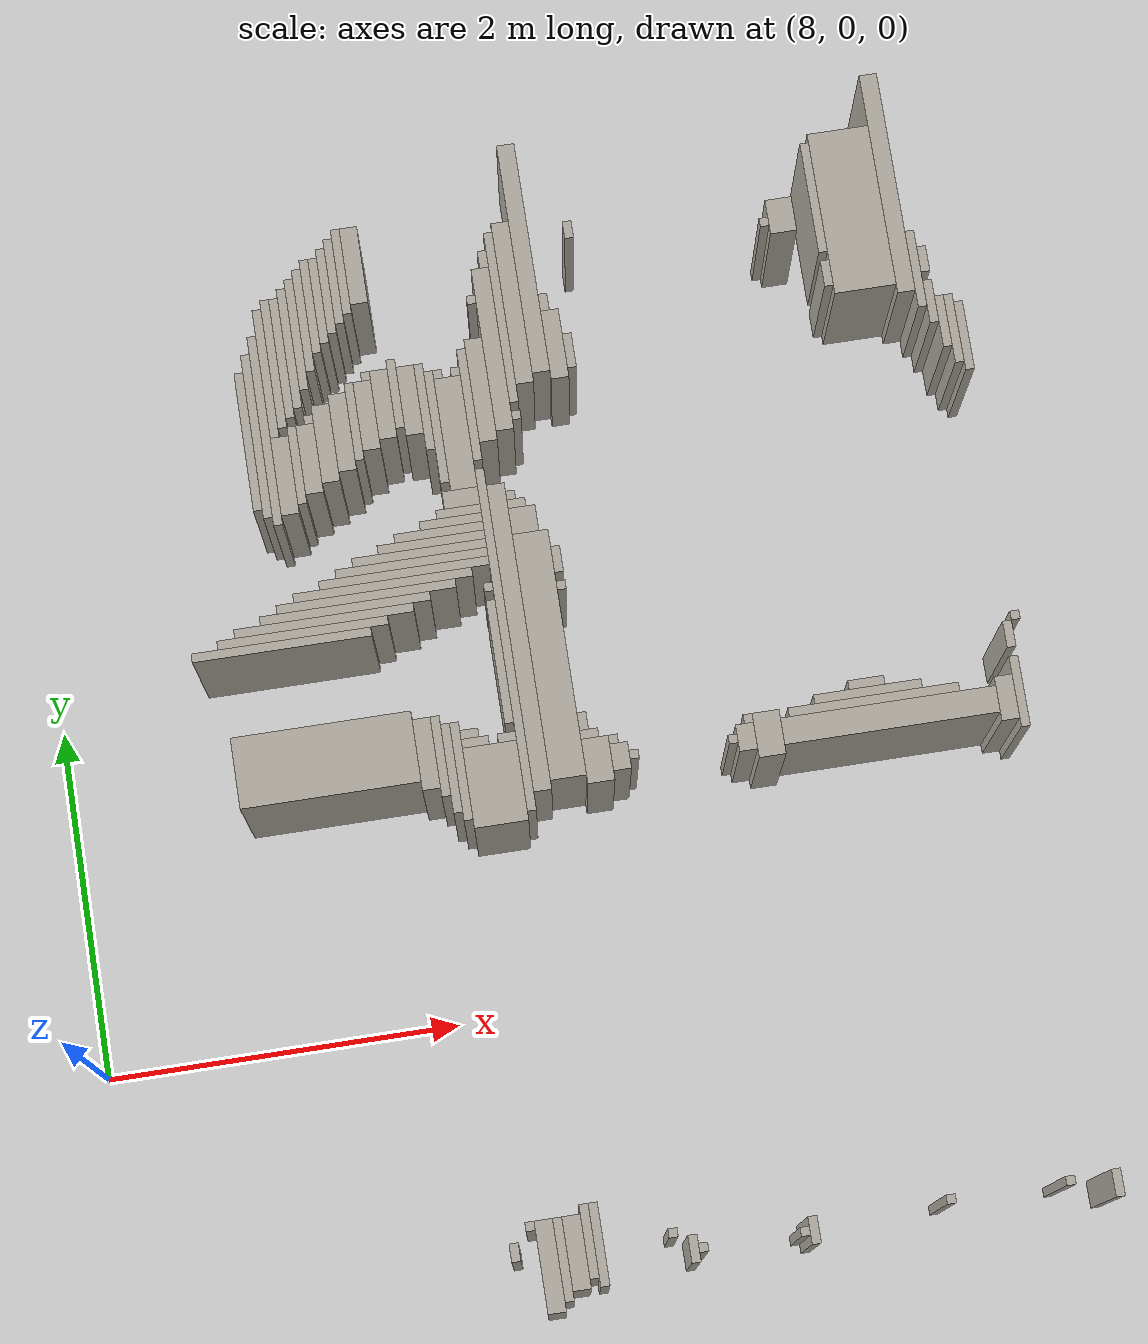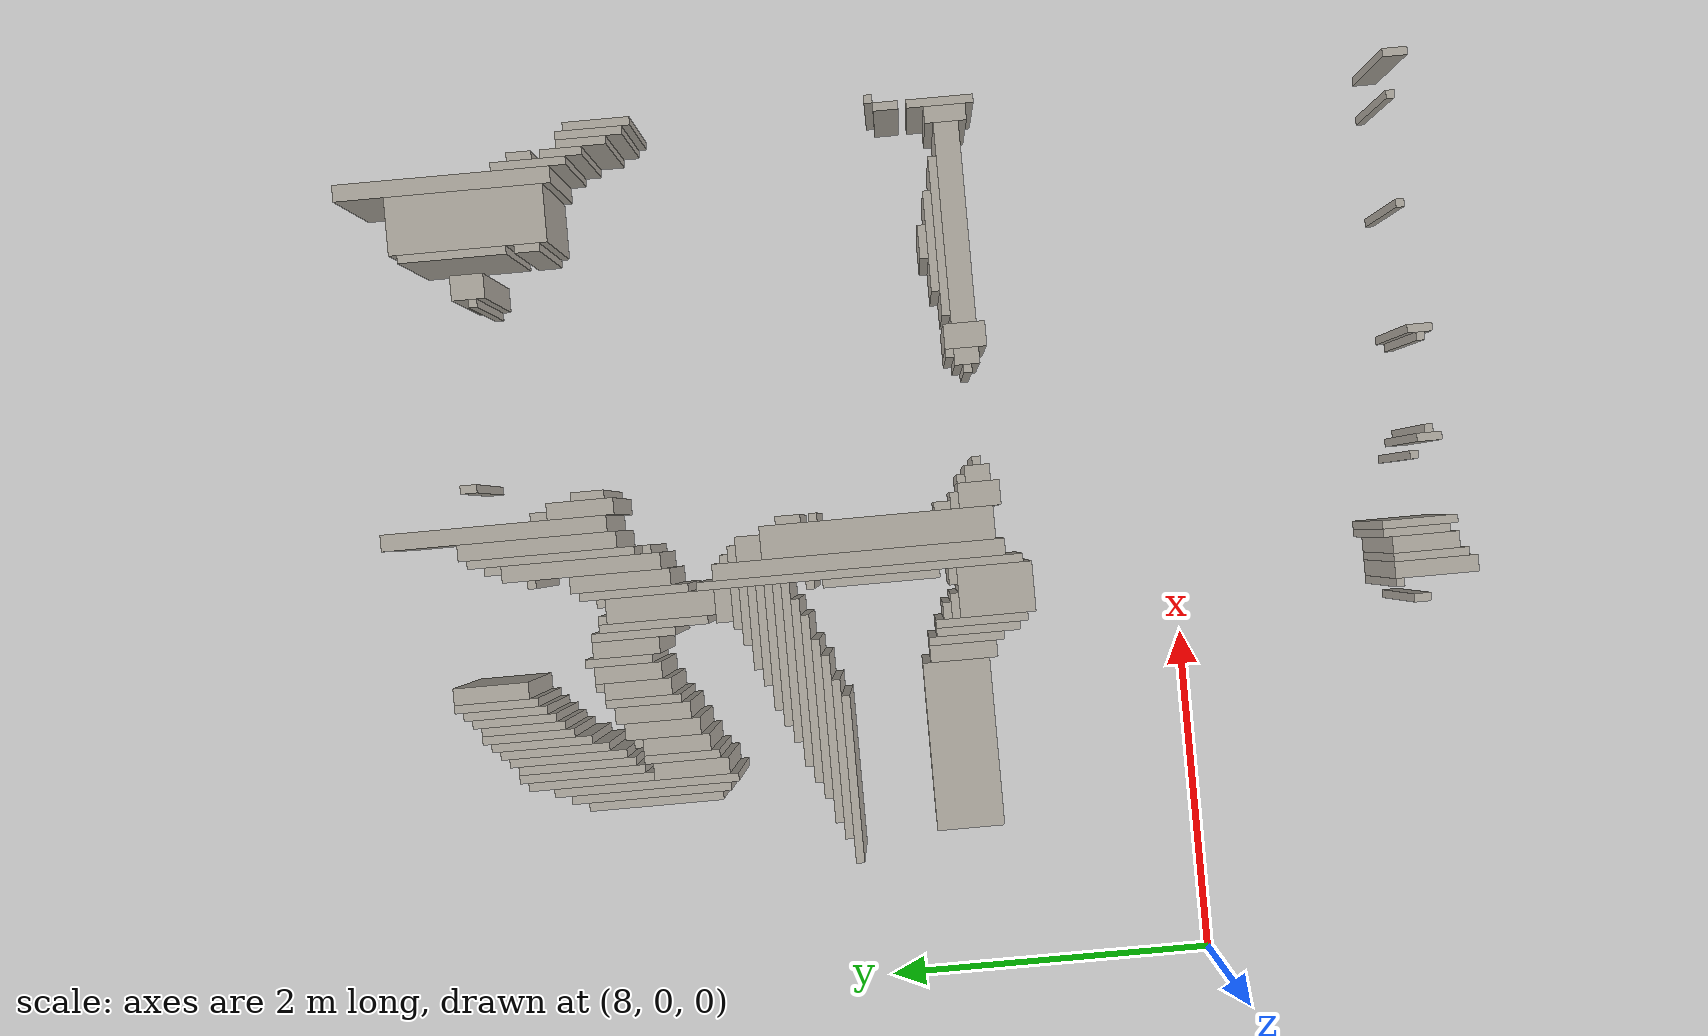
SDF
<sdf version="1.6">
 <world name="fr079_office">
  <include><uri>model://sun</uri></include>
  <include><uri>model://ground_plane</uri></include>
  <model name="fr079_office_walls">
   <static>true</static>
   <link name="w1563">
    <pose>10.302 -1.456 0.500 0 0 0</pose>
    <collision name="c"><geometry><box><size>0.100 0.500 1.000</size></box></geometry></collision>
    <visual name="v">
     <geometry><box><size>0.100 0.500 1.000</size></box></geometry>
     <material><ambient>0.68 0.66 0.62 1</ambient><diffuse>0.68 0.66 0.62 1</diffuse></material>
    </visual>
   </link>
   <link name="w1589">
    <pose>10.377 -1.431 0.500 0 0 0</pose>
    <collision name="c"><geometry><box><size>0.050 0.450 1.000</size></box></geometry></collision>
    <visual name="v">
     <geometry><box><size>0.050 0.450 1.000</size></box></geometry>
     <material><ambient>0.68 0.66 0.62 1</ambient><diffuse>0.68 0.66 0.62 1</diffuse></material>
    </visual>
   </link>
   <link name="w1621">
    <pose>10.452 -1.406 0.500 0 0 0</pose>
    <collision name="c"><geometry><box><size>0.100 0.400 1.000</size></box></geometry></collision>
    <visual name="v">
     <geometry><box><size>0.100 0.400 1.000</size></box></geometry>
     <material><ambient>0.68 0.66 0.62 1</ambient><diffuse>0.68 0.66 0.62 1</diffuse></material>
    </visual>
   </link>
   <link name="w1622">
    <pose>10.577 -1.381 0.500 0 0 0</pose>
    <collision name="c"><geometry><box><size>0.050 0.450 1.000</size></box></geometry></collision>
    <visual name="v">
     <geometry><box><size>0.050 0.450 1.000</size></box></geometry>
     <material><ambient>0.68 0.66 0.62 1</ambient><diffuse>0.68 0.66 0.62 1</diffuse></material>
    </visual>
   </link>
   <link name="w1650">
    <pose>10.527 -1.356 0.500 0 0 0</pose>
    <collision name="c"><geometry><box><size>0.050 0.400 1.000</size></box></geometry></collision>
    <visual name="v">
     <geometry><box><size>0.050 0.400 1.000</size></box></geometry>
     <material><ambient>0.68 0.66 0.62 1</ambient><diffuse>0.68 0.66 0.62 1</diffuse></material>
    </visual>
   </link>
   <link name="w1651">
    <pose>11.077 -1.481 0.500 0 0 0</pose>
    <collision name="c"><geometry><box><size>0.050 0.150 1.000</size></box></geometry></collision>
    <visual name="v">
     <geometry><box><size>0.050 0.150 1.000</size></box></geometry>
     <material><ambient>0.68 0.66 0.62 1</ambient><diffuse>0.68 0.66 0.62 1</diffuse></material>
    </visual>
   </link>
   <link name="w1652">
    <pose>11.727 -1.481 0.500 0 0 0</pose>
    <collision name="c"><geometry><box><size>0.050 0.150 1.000</size></box></geometry></collision>
    <visual name="v">
     <geometry><box><size>0.050 0.150 1.000</size></box></geometry>
     <material><ambient>0.68 0.66 0.62 1</ambient><diffuse>0.68 0.66 0.62 1</diffuse></material>
    </visual>
   </link>
   <link name="w1653">
    <pose>13.377 -1.481 0.500 0 0 0</pose>
    <collision name="c"><geometry><box><size>0.050 0.150 1.000</size></box></geometry></collision>
    <visual name="v">
     <geometry><box><size>0.050 0.150 1.000</size></box></geometry>
     <material><ambient>0.68 0.66 0.62 1</ambient><diffuse>0.68 0.66 0.62 1</diffuse></material>
    </visual>
   </link>
   <link name="w1676">
    <pose>11.127 -1.481 0.500 0 0 0</pose>
    <collision name="c"><geometry><box><size>0.050 0.050 1.000</size></box></geometry></collision>
    <visual name="v">
     <geometry><box><size>0.050 0.050 1.000</size></box></geometry>
     <material><ambient>0.68 0.66 0.62 1</ambient><diffuse>0.68 0.66 0.62 1</diffuse></material>
    </visual>
   </link>
   <link name="w1677">
    <pose>11.677 -1.481 0.500 0 0 0</pose>
    <collision name="c"><geometry><box><size>0.050 0.050 1.000</size></box></geometry></collision>
    <visual name="v">
     <geometry><box><size>0.050 0.050 1.000</size></box></geometry>
     <material><ambient>0.68 0.66 0.62 1</ambient><diffuse>0.68 0.66 0.62 1</diffuse></material>
    </visual>
   </link>
   <link name="w1691">
    <pose>12.477 -1.431 0.500 0 0 0</pose>
    <collision name="c"><geometry><box><size>0.050 0.050 1.000</size></box></geometry></collision>
    <visual name="v">
     <geometry><box><size>0.050 0.050 1.000</size></box></geometry>
     <material><ambient>0.68 0.66 0.62 1</ambient><diffuse>0.68 0.66 0.62 1</diffuse></material>
    </visual>
   </link>
   <link name="w1692">
    <pose>13.127 -1.431 0.500 0 0 0</pose>
    <collision name="c"><geometry><box><size>0.050 0.050 1.000</size></box></geometry></collision>
    <visual name="v">
     <geometry><box><size>0.050 0.050 1.000</size></box></geometry>
     <material><ambient>0.68 0.66 0.62 1</ambient><diffuse>0.68 0.66 0.62 1</diffuse></material>
    </visual>
   </link>
   <link name="w1699">
    <pose>10.127 -1.356 0.500 0 0 0</pose>
    <collision name="c"><geometry><box><size>0.050 0.100 1.000</size></box></geometry></collision>
    <visual name="v">
     <geometry><box><size>0.050 0.100 1.000</size></box></geometry>
     <material><ambient>0.68 0.66 0.62 1</ambient><diffuse>0.68 0.66 0.62 1</diffuse></material>
    </visual>
   </link>
   <link name="w1700">
    <pose>10.977 -1.381 0.500 0 0 0</pose>
    <collision name="c"><geometry><box><size>0.050 0.050 1.000</size></box></geometry></collision>
    <visual name="v">
     <geometry><box><size>0.050 0.050 1.000</size></box></geometry>
     <material><ambient>0.68 0.66 0.62 1</ambient><diffuse>0.68 0.66 0.62 1</diffuse></material>
    </visual>
   </link>
   <link name="w1738">
    <pose>10.227 -1.231 0.500 0 0 0</pose>
    <collision name="c"><geometry><box><size>0.050 0.050 1.000</size></box></geometry></collision>
    <visual name="v">
     <geometry><box><size>0.050 0.050 1.000</size></box></geometry>
     <material><ambient>0.68 0.66 0.62 1</ambient><diffuse>0.68 0.66 0.62 1</diffuse></material>
    </visual>
   </link>
   <link name="w1827">
    <pose>10.402 1.169 0.500 0 0 0</pose>
    <collision name="c"><geometry><box><size>0.300 0.450 1.000</size></box></geometry></collision>
    <visual name="v">
     <geometry><box><size>0.300 0.450 1.000</size></box></geometry>
     <material><ambient>0.68 0.66 0.62 1</ambient><diffuse>0.68 0.66 0.62 1</diffuse></material>
    </visual>
   </link>
   <link name="w1835">
    <pose>10.227 1.269 0.500 0 0 0</pose>
    <collision name="c"><geometry><box><size>0.050 0.550 1.000</size></box></geometry></collision>
    <visual name="v">
     <geometry><box><size>0.050 0.550 1.000</size></box></geometry>
     <material><ambient>0.68 0.66 0.62 1</ambient><diffuse>0.68 0.66 0.62 1</diffuse></material>
    </visual>
   </link>
   <link name="w1836">
    <pose>10.577 1.969 0.500 0 0 0</pose>
    <collision name="c"><geometry><box><size>0.050 1.950 1.000</size></box></geometry></collision>
    <visual name="v">
     <geometry><box><size>0.050 1.950 1.000</size></box></geometry>
     <material><ambient>0.68 0.66 0.62 1</ambient><diffuse>0.68 0.66 0.62 1</diffuse></material>
    </visual>
   </link>
   <link name="w1850">
    <pose>10.177 1.294 0.500 0 0 0</pose>
    <collision name="c"><geometry><box><size>0.050 0.500 1.000</size></box></geometry></collision>
    <visual name="v">
     <geometry><box><size>0.050 0.500 1.000</size></box></geometry>
     <material><ambient>0.68 0.66 0.62 1</ambient><diffuse>0.68 0.66 0.62 1</diffuse></material>
    </visual>
   </link>
   <link name="w1851">
    <pose>13.327 1.244 0.500 0 0 0</pose>
    <collision name="c"><geometry><box><size>0.050 0.400 1.000</size></box></geometry></collision>
    <visual name="v">
     <geometry><box><size>0.050 0.400 1.000</size></box></geometry>
     <material><ambient>0.68 0.66 0.62 1</ambient><diffuse>0.68 0.66 0.62 1</diffuse></material>
    </visual>
   </link>
   <link name="w1867">
    <pose>10.652 1.969 0.500 0 0 0</pose>
    <collision name="c"><geometry><box><size>0.100 1.750 1.000</size></box></geometry></collision>
    <visual name="v">
     <geometry><box><size>0.100 1.750 1.000</size></box></geometry>
     <material><ambient>0.68 0.66 0.62 1</ambient><diffuse>0.68 0.66 0.62 1</diffuse></material>
    </visual>
   </link>
   <link name="w1868">
    <pose>10.977 1.219 0.500 0 0 0</pose>
    <collision name="c"><geometry><box><size>0.150 0.250 1.000</size></box></geometry></collision>
    <visual name="v">
     <geometry><box><size>0.150 0.250 1.000</size></box></geometry>
     <material><ambient>0.68 0.66 0.62 1</ambient><diffuse>0.68 0.66 0.62 1</diffuse></material>
    </visual>
   </link>
   <link name="w1869">
    <pose>11.927 1.219 0.500 0 0 0</pose>
    <collision name="c"><geometry><box><size>0.150 0.250 1.000</size></box></geometry></collision>
    <visual name="v">
     <geometry><box><size>0.150 0.250 1.000</size></box></geometry>
     <material><ambient>0.68 0.66 0.62 1</ambient><diffuse>0.68 0.66 0.62 1</diffuse></material>
    </visual>
   </link>
   <link name="w1870">
    <pose>13.252 1.219 0.500 0 0 0</pose>
    <collision name="c"><geometry><box><size>0.100 0.250 1.000</size></box></geometry></collision>
    <visual name="v">
     <geometry><box><size>0.100 0.250 1.000</size></box></geometry>
     <material><ambient>0.68 0.66 0.62 1</ambient><diffuse>0.68 0.66 0.62 1</diffuse></material>
    </visual>
   </link>
   <link name="w1897">
    <pose>10.127 1.369 0.500 0 0 0</pose>
    <collision name="c"><geometry><box><size>0.050 0.450 1.000</size></box></geometry></collision>
    <visual name="v">
     <geometry><box><size>0.050 0.450 1.000</size></box></geometry>
     <material><ambient>0.68 0.66 0.62 1</ambient><diffuse>0.68 0.66 0.62 1</diffuse></material>
    </visual>
   </link>
   <link name="w1898">
    <pose>10.802 1.844 0.500 0 0 0</pose>
    <collision name="c"><geometry><box><size>0.200 1.400 1.000</size></box></geometry></collision>
    <visual name="v">
     <geometry><box><size>0.200 1.400 1.000</size></box></geometry>
     <material><ambient>0.68 0.66 0.62 1</ambient><diffuse>0.68 0.66 0.62 1</diffuse></material>
    </visual>
   </link>
   <link name="w1899">
    <pose>11.102 1.219 0.500 0 0 0</pose>
    <collision name="c"><geometry><box><size>0.100 0.150 1.000</size></box></geometry></collision>
    <visual name="v">
     <geometry><box><size>0.100 0.150 1.000</size></box></geometry>
     <material><ambient>0.68 0.66 0.62 1</ambient><diffuse>0.68 0.66 0.62 1</diffuse></material>
    </visual>
   </link>
   <link name="w1900">
    <pose>11.802 1.219 0.500 0 0 0</pose>
    <collision name="c"><geometry><box><size>0.100 0.150 1.000</size></box></geometry></collision>
    <visual name="v">
     <geometry><box><size>0.100 0.150 1.000</size></box></geometry>
     <material><ambient>0.68 0.66 0.62 1</ambient><diffuse>0.68 0.66 0.62 1</diffuse></material>
    </visual>
   </link>
   <link name="w1901">
    <pose>12.602 1.219 0.500 0 0 0</pose>
    <collision name="c"><geometry><box><size>1.200 0.150 1.000</size></box></geometry></collision>
    <visual name="v">
     <geometry><box><size>1.200 0.150 1.000</size></box></geometry>
     <material><ambient>0.68 0.66 0.62 1</ambient><diffuse>0.68 0.66 0.62 1</diffuse></material>
    </visual>
   </link>
   <link name="w1930">
    <pose>10.052 1.394 0.500 0 0 0</pose>
    <collision name="c"><geometry><box><size>0.100 0.400 1.000</size></box></geometry></collision>
    <visual name="v">
     <geometry><box><size>0.100 0.400 1.000</size></box></geometry>
     <material><ambient>0.68 0.66 0.62 1</ambient><diffuse>0.68 0.66 0.62 1</diffuse></material>
    </visual>
   </link>
   <link name="w1931">
    <pose>11.177 1.219 0.500 0 0 0</pose>
    <collision name="c"><geometry><box><size>0.050 0.050 1.000</size></box></geometry></collision>
    <visual name="v">
     <geometry><box><size>0.050 0.050 1.000</size></box></geometry>
     <material><ambient>0.68 0.66 0.62 1</ambient><diffuse>0.68 0.66 0.62 1</diffuse></material>
    </visual>
   </link>
   <link name="w1932">
    <pose>11.727 1.219 0.500 0 0 0</pose>
    <collision name="c"><geometry><box><size>0.050 0.050 1.000</size></box></geometry></collision>
    <visual name="v">
     <geometry><box><size>0.050 0.050 1.000</size></box></geometry>
     <material><ambient>0.68 0.66 0.62 1</ambient><diffuse>0.68 0.66 0.62 1</diffuse></material>
    </visual>
   </link>
   <link name="w1953">
    <pose>9.502 1.444 0.500 0 0 0</pose>
    <collision name="c"><geometry><box><size>1.000 0.400 1.000</size></box></geometry></collision>
    <visual name="v">
     <geometry><box><size>1.000 0.400 1.000</size></box></geometry>
     <material><ambient>0.68 0.66 0.62 1</ambient><diffuse>0.68 0.66 0.62 1</diffuse></material>
    </visual>
   </link>
   <link name="w1967">
    <pose>11.077 1.319 0.500 0 0 0</pose>
    <collision name="c"><geometry><box><size>0.050 0.050 1.000</size></box></geometry></collision>
    <visual name="v">
     <geometry><box><size>0.050 0.050 1.000</size></box></geometry>
     <material><ambient>0.68 0.66 0.62 1</ambient><diffuse>0.68 0.66 0.62 1</diffuse></material>
    </visual>
   </link>
   <link name="w1968">
    <pose>11.827 1.319 0.500 0 0 0</pose>
    <collision name="c"><geometry><box><size>0.050 0.050 1.000</size></box></geometry></collision>
    <visual name="v">
     <geometry><box><size>0.050 0.050 1.000</size></box></geometry>
     <material><ambient>0.68 0.66 0.62 1</ambient><diffuse>0.68 0.66 0.62 1</diffuse></material>
    </visual>
   </link>
   <link name="w1969">
    <pose>12.527 1.319 0.500 0 0 0</pose>
    <collision name="c"><geometry><box><size>0.950 0.050 1.000</size></box></geometry></collision>
    <visual name="v">
     <geometry><box><size>0.950 0.050 1.000</size></box></geometry>
     <material><ambient>0.68 0.66 0.62 1</ambient><diffuse>0.68 0.66 0.62 1</diffuse></material>
    </visual>
   </link>
   <link name="w1984">
    <pose>10.952 1.369 0.500 0 0 0</pose>
    <collision name="c"><geometry><box><size>0.100 0.050 1.000</size></box></geometry></collision>
    <visual name="v">
     <geometry><box><size>0.100 0.050 1.000</size></box></geometry>
     <material><ambient>0.68 0.66 0.62 1</ambient><diffuse>0.68 0.66 0.62 1</diffuse></material>
    </visual>
   </link>
   <link name="w1985">
    <pose>12.502 1.369 0.500 0 0 0</pose>
    <collision name="c"><geometry><box><size>0.600 0.050 1.000</size></box></geometry></collision>
    <visual name="v">
     <geometry><box><size>0.600 0.050 1.000</size></box></geometry>
     <material><ambient>0.68 0.66 0.62 1</ambient><diffuse>0.68 0.66 0.62 1</diffuse></material>
    </visual>
   </link>
   <link name="w1996">
    <pose>10.327 1.419 0.500 0 0 0</pose>
    <collision name="c"><geometry><box><size>0.150 0.050 1.000</size></box></geometry></collision>
    <visual name="v">
     <geometry><box><size>0.150 0.050 1.000</size></box></geometry>
     <material><ambient>0.68 0.66 0.62 1</ambient><diffuse>0.68 0.66 0.62 1</diffuse></material>
    </visual>
   </link>
   <link name="w1997">
    <pose>10.502 1.419 0.500 0 0 0</pose>
    <collision name="c"><geometry><box><size>0.100 0.050 1.000</size></box></geometry></collision>
    <visual name="v">
     <geometry><box><size>0.100 0.050 1.000</size></box></geometry>
     <material><ambient>0.68 0.66 0.62 1</ambient><diffuse>0.68 0.66 0.62 1</diffuse></material>
    </visual>
   </link>
   <link name="w1998">
    <pose>10.927 1.444 0.500 0 0 0</pose>
    <collision name="c"><geometry><box><size>0.050 0.100 1.000</size></box></geometry></collision>
    <visual name="v">
     <geometry><box><size>0.050 0.100 1.000</size></box></geometry>
     <material><ambient>0.68 0.66 0.62 1</ambient><diffuse>0.68 0.66 0.62 1</diffuse></material>
    </visual>
   </link>
   <link name="w1999">
    <pose>12.502 1.419 0.500 0 0 0</pose>
    <collision name="c"><geometry><box><size>0.200 0.050 1.000</size></box></geometry></collision>
    <visual name="v">
     <geometry><box><size>0.200 0.050 1.000</size></box></geometry>
     <material><ambient>0.68 0.66 0.62 1</ambient><diffuse>0.68 0.66 0.62 1</diffuse></material>
    </visual>
   </link>
   <link name="w2015">
    <pose>10.302 1.469 0.500 0 0 0</pose>
    <collision name="c"><geometry><box><size>0.100 0.050 1.000</size></box></geometry></collision>
    <visual name="v">
     <geometry><box><size>0.100 0.050 1.000</size></box></geometry>
     <material><ambient>0.68 0.66 0.62 1</ambient><diffuse>0.68 0.66 0.62 1</diffuse></material>
    </visual>
   </link>
   <link name="w2032">
    <pose>10.527 1.844 0.500 0 0 0</pose>
    <collision name="c"><geometry><box><size>0.050 0.700 1.000</size></box></geometry></collision>
    <visual name="v">
     <geometry><box><size>0.050 0.700 1.000</size></box></geometry>
     <material><ambient>0.68 0.66 0.62 1</ambient><diffuse>0.68 0.66 0.62 1</diffuse></material>
    </visual>
   </link>
   <link name="w2033">
    <pose>13.327 1.569 0.500 0 0 0</pose>
    <collision name="c"><geometry><box><size>0.050 0.150 1.000</size></box></geometry></collision>
    <visual name="v">
     <geometry><box><size>0.050 0.150 1.000</size></box></geometry>
     <material><ambient>0.68 0.66 0.62 1</ambient><diffuse>0.68 0.66 0.62 1</diffuse></material>
    </visual>
   </link>
   <link name="w2076">
    <pose>13.377 1.669 0.500 0 0 0</pose>
    <collision name="c"><geometry><box><size>0.050 0.050 1.000</size></box></geometry></collision>
    <visual name="v">
     <geometry><box><size>0.050 0.050 1.000</size></box></geometry>
     <material><ambient>0.68 0.66 0.62 1</ambient><diffuse>0.68 0.66 0.62 1</diffuse></material>
    </visual>
   </link>
   <link name="w2199">
    <pose>9.352 2.119 0.500 0 0 0</pose>
    <collision name="c"><geometry><box><size>1.000 0.050 1.000</size></box></geometry></collision>
    <visual name="v">
     <geometry><box><size>1.000 0.050 1.000</size></box></geometry>
     <material><ambient>0.68 0.66 0.62 1</ambient><diffuse>0.68 0.66 0.62 1</diffuse></material>
    </visual>
   </link>
   <link name="w2206">
    <pose>9.477 2.169 0.500 0 0 0</pose>
    <collision name="c"><geometry><box><size>0.950 0.050 1.000</size></box></geometry></collision>
    <visual name="v">
     <geometry><box><size>0.950 0.050 1.000</size></box></geometry>
     <material><ambient>0.68 0.66 0.62 1</ambient><diffuse>0.68 0.66 0.62 1</diffuse></material>
    </visual>
   </link>
   <link name="w2216">
    <pose>9.602 2.219 0.500 0 0 0</pose>
    <collision name="c"><geometry><box><size>1.000 0.050 1.000</size></box></geometry></collision>
    <visual name="v">
     <geometry><box><size>1.000 0.050 1.000</size></box></geometry>
     <material><ambient>0.68 0.66 0.62 1</ambient><diffuse>0.68 0.66 0.62 1</diffuse></material>
    </visual>
   </link>
   <link name="w2217">
    <pose>10.927 2.219 0.500 0 0 0</pose>
    <collision name="c"><geometry><box><size>0.050 0.050 1.000</size></box></geometry></collision>
    <visual name="v">
     <geometry><box><size>0.050 0.050 1.000</size></box></geometry>
     <material><ambient>0.68 0.66 0.62 1</ambient><diffuse>0.68 0.66 0.62 1</diffuse></material>
    </visual>
   </link>
   <link name="w2228">
    <pose>9.727 2.269 0.500 0 0 0</pose>
    <collision name="c"><geometry><box><size>0.950 0.050 1.000</size></box></geometry></collision>
    <visual name="v">
     <geometry><box><size>0.950 0.050 1.000</size></box></geometry>
     <material><ambient>0.68 0.66 0.62 1</ambient><diffuse>0.68 0.66 0.62 1</diffuse></material>
    </visual>
   </link>
   <link name="w2229">
    <pose>10.527 2.269 0.500 0 0 0</pose>
    <collision name="c"><geometry><box><size>0.050 0.050 1.000</size></box></geometry></collision>
    <visual name="v">
     <geometry><box><size>0.050 0.050 1.000</size></box></geometry>
     <material><ambient>0.68 0.66 0.62 1</ambient><diffuse>0.68 0.66 0.62 1</diffuse></material>
    </visual>
   </link>
   <link name="w2237">
    <pose>9.852 2.319 0.500 0 0 0</pose>
    <collision name="c"><geometry><box><size>1.000 0.050 1.000</size></box></geometry></collision>
    <visual name="v">
     <geometry><box><size>1.000 0.050 1.000</size></box></geometry>
     <material><ambient>0.68 0.66 0.62 1</ambient><diffuse>0.68 0.66 0.62 1</diffuse></material>
    </visual>
   </link>
   <link name="w2238">
    <pose>10.927 2.369 0.500 0 0 0</pose>
    <collision name="c"><geometry><box><size>0.050 0.150 1.000</size></box></geometry></collision>
    <visual name="v">
     <geometry><box><size>0.050 0.150 1.000</size></box></geometry>
     <material><ambient>0.68 0.66 0.62 1</ambient><diffuse>0.68 0.66 0.62 1</diffuse></material>
    </visual>
   </link>
   <link name="w2250">
    <pose>9.952 2.369 0.500 0 0 0</pose>
    <collision name="c"><geometry><box><size>1.000 0.050 1.000</size></box></geometry></collision>
    <visual name="v">
     <geometry><box><size>1.000 0.050 1.000</size></box></geometry>
     <material><ambient>0.68 0.66 0.62 1</ambient><diffuse>0.68 0.66 0.62 1</diffuse></material>
    </visual>
   </link>
   <link name="w2258">
    <pose>10.077 2.419 0.500 0 0 0</pose>
    <collision name="c"><geometry><box><size>0.950 0.050 1.000</size></box></geometry></collision>
    <visual name="v">
     <geometry><box><size>0.950 0.050 1.000</size></box></geometry>
     <material><ambient>0.68 0.66 0.62 1</ambient><diffuse>0.68 0.66 0.62 1</diffuse></material>
    </visual>
   </link>
   <link name="w2265">
    <pose>10.127 2.469 0.500 0 0 0</pose>
    <collision name="c"><geometry><box><size>0.850 0.050 1.000</size></box></geometry></collision>
    <visual name="v">
     <geometry><box><size>0.850 0.050 1.000</size></box></geometry>
     <material><ambient>0.68 0.66 0.62 1</ambient><diffuse>0.68 0.66 0.62 1</diffuse></material>
    </visual>
   </link>
   <link name="w2280">
    <pose>10.177 2.519 0.500 0 0 0</pose>
    <collision name="c"><geometry><box><size>0.750 0.050 1.000</size></box></geometry></collision>
    <visual name="v">
     <geometry><box><size>0.750 0.050 1.000</size></box></geometry>
     <material><ambient>0.68 0.66 0.62 1</ambient><diffuse>0.68 0.66 0.62 1</diffuse></material>
    </visual>
   </link>
   <link name="w2301">
    <pose>10.252 2.569 0.500 0 0 0</pose>
    <collision name="c"><geometry><box><size>0.600 0.050 1.000</size></box></geometry></collision>
    <visual name="v">
     <geometry><box><size>0.600 0.050 1.000</size></box></geometry>
     <material><ambient>0.68 0.66 0.62 1</ambient><diffuse>0.68 0.66 0.62 1</diffuse></material>
    </visual>
   </link>
   <link name="w2302">
    <pose>10.777 2.619 0.500 0 0 0</pose>
    <collision name="c"><geometry><box><size>0.150 0.150 1.000</size></box></geometry></collision>
    <visual name="v">
     <geometry><box><size>0.150 0.150 1.000</size></box></geometry>
     <material><ambient>0.68 0.66 0.62 1</ambient><diffuse>0.68 0.66 0.62 1</diffuse></material>
    </visual>
   </link>
   <link name="w2320">
    <pose>10.302 2.619 0.500 0 0 0</pose>
    <collision name="c"><geometry><box><size>0.500 0.050 1.000</size></box></geometry></collision>
    <visual name="v">
     <geometry><box><size>0.500 0.050 1.000</size></box></geometry>
     <material><ambient>0.68 0.66 0.62 1</ambient><diffuse>0.68 0.66 0.62 1</diffuse></material>
    </visual>
   </link>
   <link name="w2328">
    <pose>10.377 2.669 0.500 0 0 0</pose>
    <collision name="c"><geometry><box><size>0.350 0.050 1.000</size></box></geometry></collision>
    <visual name="v">
     <geometry><box><size>0.350 0.050 1.000</size></box></geometry>
     <material><ambient>0.68 0.66 0.62 1</ambient><diffuse>0.68 0.66 0.62 1</diffuse></material>
    </visual>
   </link>
   <link name="w2336">
    <pose>10.427 2.719 0.500 0 0 0</pose>
    <collision name="c"><geometry><box><size>0.250 0.050 1.000</size></box></geometry></collision>
    <visual name="v">
     <geometry><box><size>0.250 0.050 1.000</size></box></geometry>
     <material><ambient>0.68 0.66 0.62 1</ambient><diffuse>0.68 0.66 0.62 1</diffuse></material>
    </visual>
   </link>
   <link name="w2337">
    <pose>10.752 2.719 0.500 0 0 0</pose>
    <collision name="c"><geometry><box><size>0.100 0.050 1.000</size></box></geometry></collision>
    <visual name="v">
     <geometry><box><size>0.100 0.050 1.000</size></box></geometry>
     <material><ambient>0.68 0.66 0.62 1</ambient><diffuse>0.68 0.66 0.62 1</diffuse></material>
    </visual>
   </link>
   <link name="w2345">
    <pose>10.452 2.794 0.500 0 0 0</pose>
    <collision name="c"><geometry><box><size>0.200 0.100 1.000</size></box></geometry></collision>
    <visual name="v">
     <geometry><box><size>0.200 0.100 1.000</size></box></geometry>
     <material><ambient>0.68 0.66 0.62 1</ambient><diffuse>0.68 0.66 0.62 1</diffuse></material>
    </visual>
   </link>
   <link name="w2346">
    <pose>10.727 2.769 0.500 0 0 0</pose>
    <collision name="c"><geometry><box><size>0.050 0.050 1.000</size></box></geometry></collision>
    <visual name="v">
     <geometry><box><size>0.050 0.050 1.000</size></box></geometry>
     <material><ambient>0.68 0.66 0.62 1</ambient><diffuse>0.68 0.66 0.62 1</diffuse></material>
    </visual>
   </link>
   <link name="w2353">
    <pose>9.427 3.344 0.500 0 0 0</pose>
    <collision name="c"><geometry><box><size>0.050 1.100 1.000</size></box></geometry></collision>
    <visual name="v">
     <geometry><box><size>0.050 1.100 1.000</size></box></geometry>
     <material><ambient>0.68 0.66 0.62 1</ambient><diffuse>0.68 0.66 0.62 1</diffuse></material>
    </visual>
   </link>
   <link name="w2364">
    <pose>9.377 3.319 0.500 0 0 0</pose>
    <collision name="c"><geometry><box><size>0.050 0.950 1.000</size></box></geometry></collision>
    <visual name="v">
     <geometry><box><size>0.050 0.950 1.000</size></box></geometry>
     <material><ambient>0.68 0.66 0.62 1</ambient><diffuse>0.68 0.66 0.62 1</diffuse></material>
    </visual>
   </link>
   <link name="w2365">
    <pose>9.502 3.069 0.500 0 0 0</pose>
    <collision name="c"><geometry><box><size>0.100 0.450 1.000</size></box></geometry></collision>
    <visual name="v">
     <geometry><box><size>0.100 0.450 1.000</size></box></geometry>
     <material><ambient>0.68 0.66 0.62 1</ambient><diffuse>0.68 0.66 0.62 1</diffuse></material>
    </visual>
   </link>
   <link name="w2366">
    <pose>10.477 3.169 0.500 0 0 0</pose>
    <collision name="c"><geometry><box><size>0.150 0.650 1.000</size></box></geometry></collision>
    <visual name="v">
     <geometry><box><size>0.150 0.650 1.000</size></box></geometry>
     <material><ambient>0.68 0.66 0.62 1</ambient><diffuse>0.68 0.66 0.62 1</diffuse></material>
    </visual>
   </link>
   <link name="w2377">
    <pose>9.327 3.294 0.500 0 0 0</pose>
    <collision name="c"><geometry><box><size>0.050 0.800 1.000</size></box></geometry></collision>
    <visual name="v">
     <geometry><box><size>0.050 0.800 1.000</size></box></geometry>
     <material><ambient>0.68 0.66 0.62 1</ambient><diffuse>0.68 0.66 0.62 1</diffuse></material>
    </visual>
   </link>
   <link name="w2378">
    <pose>9.577 3.119 0.500 0 0 0</pose>
    <collision name="c"><geometry><box><size>0.050 0.450 1.000</size></box></geometry></collision>
    <visual name="v">
     <geometry><box><size>0.050 0.450 1.000</size></box></geometry>
     <material><ambient>0.68 0.66 0.62 1</ambient><diffuse>0.68 0.66 0.62 1</diffuse></material>
    </visual>
   </link>
   <link name="w2379">
    <pose>10.377 3.219 0.500 0 0 0</pose>
    <collision name="c"><geometry><box><size>0.050 0.650 1.000</size></box></geometry></collision>
    <visual name="v">
     <geometry><box><size>0.050 0.650 1.000</size></box></geometry>
     <material><ambient>0.68 0.66 0.62 1</ambient><diffuse>0.68 0.66 0.62 1</diffuse></material>
    </visual>
   </link>
   <link name="w2390">
    <pose>9.652 3.144 0.500 0 0 0</pose>
    <collision name="c"><geometry><box><size>0.100 0.400 1.000</size></box></geometry></collision>
    <visual name="v">
     <geometry><box><size>0.100 0.400 1.000</size></box></geometry>
     <material><ambient>0.68 0.66 0.62 1</ambient><diffuse>0.68 0.66 0.62 1</diffuse></material>
    </visual>
   </link>
   <link name="w2399">
    <pose>9.752 3.219 0.500 0 0 0</pose>
    <collision name="c"><geometry><box><size>0.100 0.450 1.000</size></box></geometry></collision>
    <visual name="v">
     <geometry><box><size>0.100 0.450 1.000</size></box></geometry>
     <material><ambient>0.68 0.66 0.62 1</ambient><diffuse>0.68 0.66 0.62 1</diffuse></material>
    </visual>
   </link>
   <link name="w2400">
    <pose>10.577 3.319 0.500 0 0 0</pose>
    <collision name="c"><geometry><box><size>0.050 0.650 1.000</size></box></geometry></collision>
    <visual name="v">
     <geometry><box><size>0.050 0.650 1.000</size></box></geometry>
     <material><ambient>0.68 0.66 0.62 1</ambient><diffuse>0.68 0.66 0.62 1</diffuse></material>
    </visual>
   </link>
   <link name="w2416">
    <pose>9.852 3.269 0.500 0 0 0</pose>
    <collision name="c"><geometry><box><size>0.100 0.450 1.000</size></box></geometry></collision>
    <visual name="v">
     <geometry><box><size>0.100 0.450 1.000</size></box></geometry>
     <material><ambient>0.68 0.66 0.62 1</ambient><diffuse>0.68 0.66 0.62 1</diffuse></material>
    </visual>
   </link>
   <link name="w2433">
    <pose>9.927 3.319 0.500 0 0 0</pose>
    <collision name="c"><geometry><box><size>0.050 0.450 1.000</size></box></geometry></collision>
    <visual name="v">
     <geometry><box><size>0.050 0.450 1.000</size></box></geometry>
     <material><ambient>0.68 0.66 0.62 1</ambient><diffuse>0.68 0.66 0.62 1</diffuse></material>
    </visual>
   </link>
   <link name="w2434">
    <pose>10.327 3.344 0.500 0 0 0</pose>
    <collision name="c"><geometry><box><size>0.050 0.500 1.000</size></box></geometry></collision>
    <visual name="v">
     <geometry><box><size>0.050 0.500 1.000</size></box></geometry>
     <material><ambient>0.68 0.66 0.62 1</ambient><diffuse>0.68 0.66 0.62 1</diffuse></material>
    </visual>
   </link>
   <link name="w2435">
    <pose>10.652 3.394 0.500 0 0 0</pose>
    <collision name="c"><geometry><box><size>0.100 0.600 1.000</size></box></geometry></collision>
    <visual name="v">
     <geometry><box><size>0.100 0.600 1.000</size></box></geometry>
     <material><ambient>0.68 0.66 0.62 1</ambient><diffuse>0.68 0.66 0.62 1</diffuse></material>
    </visual>
   </link>
   <link name="w2436">
    <pose>13.377 3.294 0.500 0 0 0</pose>
    <collision name="c"><geometry><box><size>0.050 0.400 1.000</size></box></geometry></collision>
    <visual name="v">
     <geometry><box><size>0.050 0.400 1.000</size></box></geometry>
     <material><ambient>0.68 0.66 0.62 1</ambient><diffuse>0.68 0.66 0.62 1</diffuse></material>
    </visual>
   </link>
   <link name="w2446">
    <pose>10.002 3.344 0.500 0 0 0</pose>
    <collision name="c"><geometry><box><size>0.100 0.400 1.000</size></box></geometry></collision>
    <visual name="v">
     <geometry><box><size>0.100 0.400 1.000</size></box></geometry>
     <material><ambient>0.68 0.66 0.62 1</ambient><diffuse>0.68 0.66 0.62 1</diffuse></material>
    </visual>
   </link>
   <link name="w2447">
    <pose>10.752 3.619 0.500 0 0 0</pose>
    <collision name="c"><geometry><box><size>0.100 0.950 1.000</size></box></geometry></collision>
    <visual name="v">
     <geometry><box><size>0.100 0.950 1.000</size></box></geometry>
     <material><ambient>0.68 0.66 0.62 1</ambient><diffuse>0.68 0.66 0.62 1</diffuse></material>
    </visual>
   </link>
   <link name="w2448">
    <pose>13.327 3.344 0.500 0 0 0</pose>
    <collision name="c"><geometry><box><size>0.050 0.400 1.000</size></box></geometry></collision>
    <visual name="v">
     <geometry><box><size>0.050 0.400 1.000</size></box></geometry>
     <material><ambient>0.68 0.66 0.62 1</ambient><diffuse>0.68 0.66 0.62 1</diffuse></material>
    </visual>
   </link>
   <link name="w2460">
    <pose>10.102 3.394 0.500 0 0 0</pose>
    <collision name="c"><geometry><box><size>0.100 0.400 1.000</size></box></geometry></collision>
    <visual name="v">
     <geometry><box><size>0.100 0.400 1.000</size></box></geometry>
     <material><ambient>0.68 0.66 0.62 1</ambient><diffuse>0.68 0.66 0.62 1</diffuse></material>
    </visual>
   </link>
   <link name="w2461">
    <pose>10.252 3.394 0.500 0 0 0</pose>
    <collision name="c"><geometry><box><size>0.100 0.400 1.000</size></box></geometry></collision>
    <visual name="v">
     <geometry><box><size>0.100 0.400 1.000</size></box></geometry>
     <material><ambient>0.68 0.66 0.62 1</ambient><diffuse>0.68 0.66 0.62 1</diffuse></material>
    </visual>
   </link>
   <link name="w2462">
    <pose>10.827 3.219 0.500 0 0 0</pose>
    <collision name="c"><geometry><box><size>0.050 0.050 1.000</size></box></geometry></collision>
    <visual name="v">
     <geometry><box><size>0.050 0.050 1.000</size></box></geometry>
     <material><ambient>0.68 0.66 0.62 1</ambient><diffuse>0.68 0.66 0.62 1</diffuse></material>
    </visual>
   </link>
   <link name="w2475">
    <pose>10.177 3.444 0.500 0 0 0</pose>
    <collision name="c"><geometry><box><size>0.050 0.400 1.000</size></box></geometry></collision>
    <visual name="v">
     <geometry><box><size>0.050 0.400 1.000</size></box></geometry>
     <material><ambient>0.68 0.66 0.62 1</ambient><diffuse>0.68 0.66 0.62 1</diffuse></material>
    </visual>
   </link>
   <link name="w2476">
    <pose>13.277 3.394 0.500 0 0 0</pose>
    <collision name="c"><geometry><box><size>0.050 0.300 1.000</size></box></geometry></collision>
    <visual name="v">
     <geometry><box><size>0.050 0.300 1.000</size></box></geometry>
     <material><ambient>0.68 0.66 0.62 1</ambient><diffuse>0.68 0.66 0.62 1</diffuse></material>
    </visual>
   </link>
   <link name="w2487">
    <pose>9.477 3.669 0.500 0 0 0</pose>
    <collision name="c"><geometry><box><size>0.050 0.750 1.000</size></box></geometry></collision>
    <visual name="v">
     <geometry><box><size>0.050 0.750 1.000</size></box></geometry>
     <material><ambient>0.68 0.66 0.62 1</ambient><diffuse>0.68 0.66 0.62 1</diffuse></material>
    </visual>
   </link>
   <link name="w2488">
    <pose>10.827 3.794 0.500 0 0 0</pose>
    <collision name="c"><geometry><box><size>0.050 1.000 1.000</size></box></geometry></collision>
    <visual name="v">
     <geometry><box><size>0.050 1.000 1.000</size></box></geometry>
     <material><ambient>0.68 0.66 0.62 1</ambient><diffuse>0.68 0.66 0.62 1</diffuse></material>
    </visual>
   </link>
   <link name="w2500">
    <pose>9.527 3.719 0.500 0 0 0</pose>
    <collision name="c"><geometry><box><size>0.050 0.750 1.000</size></box></geometry></collision>
    <visual name="v">
     <geometry><box><size>0.050 0.750 1.000</size></box></geometry>
     <material><ambient>0.68 0.66 0.62 1</ambient><diffuse>0.68 0.66 0.62 1</diffuse></material>
    </visual>
   </link>
   <link name="w2501">
    <pose>9.677 3.369 0.500 0 0 0</pose>
    <collision name="c"><geometry><box><size>0.050 0.050 1.000</size></box></geometry></collision>
    <visual name="v">
     <geometry><box><size>0.050 0.050 1.000</size></box></geometry>
     <material><ambient>0.68 0.66 0.62 1</ambient><diffuse>0.68 0.66 0.62 1</diffuse></material>
    </visual>
   </link>
   <link name="w2511">
    <pose>9.577 3.744 0.500 0 0 0</pose>
    <collision name="c"><geometry><box><size>0.050 0.700 1.000</size></box></geometry></collision>
    <visual name="v">
     <geometry><box><size>0.050 0.700 1.000</size></box></geometry>
     <material><ambient>0.68 0.66 0.62 1</ambient><diffuse>0.68 0.66 0.62 1</diffuse></material>
    </visual>
   </link>
   <link name="w2512">
    <pose>10.902 3.869 0.500 0 0 0</pose>
    <collision name="c"><geometry><box><size>0.100 0.950 1.000</size></box></geometry></collision>
    <visual name="v">
     <geometry><box><size>0.100 0.950 1.000</size></box></geometry>
     <material><ambient>0.68 0.66 0.62 1</ambient><diffuse>0.68 0.66 0.62 1</diffuse></material>
    </visual>
   </link>
   <link name="w2513">
    <pose>11.102 3.594 0.500 0 0 0</pose>
    <collision name="c"><geometry><box><size>0.100 0.400 1.000</size></box></geometry></collision>
    <visual name="v">
     <geometry><box><size>0.100 0.400 1.000</size></box></geometry>
     <material><ambient>0.68 0.66 0.62 1</ambient><diffuse>0.68 0.66 0.62 1</diffuse></material>
    </visual>
   </link>
   <link name="w2514">
    <pose>13.227 3.519 0.500 0 0 0</pose>
    <collision name="c"><geometry><box><size>0.050 0.250 1.000</size></box></geometry></collision>
    <visual name="v">
     <geometry><box><size>0.050 0.250 1.000</size></box></geometry>
     <material><ambient>0.68 0.66 0.62 1</ambient><diffuse>0.68 0.66 0.62 1</diffuse></material>
    </visual>
   </link>
   <link name="w2521">
    <pose>9.627 3.794 0.500 0 0 0</pose>
    <collision name="c"><geometry><box><size>0.050 0.700 1.000</size></box></geometry></collision>
    <visual name="v">
     <geometry><box><size>0.050 0.700 1.000</size></box></geometry>
     <material><ambient>0.68 0.66 0.62 1</ambient><diffuse>0.68 0.66 0.62 1</diffuse></material>
    </visual>
   </link>
   <link name="w2522">
    <pose>11.002 4.119 0.500 0 0 0</pose>
    <collision name="c"><geometry><box><size>0.100 1.350 1.000</size></box></geometry></collision>
    <visual name="v">
     <geometry><box><size>0.100 1.350 1.000</size></box></geometry>
     <material><ambient>0.68 0.66 0.62 1</ambient><diffuse>0.68 0.66 0.62 1</diffuse></material>
    </visual>
   </link>
   <link name="w2523">
    <pose>11.177 3.544 0.500 0 0 0</pose>
    <collision name="c"><geometry><box><size>0.050 0.200 1.000</size></box></geometry></collision>
    <visual name="v">
     <geometry><box><size>0.050 0.200 1.000</size></box></geometry>
     <material><ambient>0.68 0.66 0.62 1</ambient><diffuse>0.68 0.66 0.62 1</diffuse></material>
    </visual>
   </link>
   <link name="w2530">
    <pose>10.427 3.519 0.500 0 0 0</pose>
    <collision name="c"><geometry><box><size>0.050 0.050 1.000</size></box></geometry></collision>
    <visual name="v">
     <geometry><box><size>0.050 0.050 1.000</size></box></geometry>
     <material><ambient>0.68 0.66 0.62 1</ambient><diffuse>0.68 0.66 0.62 1</diffuse></material>
    </visual>
   </link>
   <link name="w2531">
    <pose>10.527 3.519 0.500 0 0 0</pose>
    <collision name="c"><geometry><box><size>0.050 0.050 1.000</size></box></geometry></collision>
    <visual name="v">
     <geometry><box><size>0.050 0.050 1.000</size></box></geometry>
     <material><ambient>0.68 0.66 0.62 1</ambient><diffuse>0.68 0.66 0.62 1</diffuse></material>
    </visual>
   </link>
   <link name="w2532">
    <pose>13.177 3.719 0.500 0 0 0</pose>
    <collision name="c"><geometry><box><size>0.050 0.450 1.000</size></box></geometry></collision>
    <visual name="v">
     <geometry><box><size>0.050 0.450 1.000</size></box></geometry>
     <material><ambient>0.68 0.66 0.62 1</ambient><diffuse>0.68 0.66 0.62 1</diffuse></material>
    </visual>
   </link>
   <link name="w2539">
    <pose>9.677 3.869 0.500 0 0 0</pose>
    <collision name="c"><geometry><box><size>0.050 0.650 1.000</size></box></geometry></collision>
    <visual name="v">
     <geometry><box><size>0.050 0.650 1.000</size></box></geometry>
     <material><ambient>0.68 0.66 0.62 1</ambient><diffuse>0.68 0.66 0.62 1</diffuse></material>
    </visual>
   </link>
   <link name="w2540">
    <pose>10.027 3.569 0.500 0 0 0</pose>
    <collision name="c"><geometry><box><size>0.050 0.050 1.000</size></box></geometry></collision>
    <visual name="v">
     <geometry><box><size>0.050 0.050 1.000</size></box></geometry>
     <material><ambient>0.68 0.66 0.62 1</ambient><diffuse>0.68 0.66 0.62 1</diffuse></material>
    </visual>
   </link>
   <link name="w2546">
    <pose>13.102 4.244 0.500 0 0 0</pose>
    <collision name="c"><geometry><box><size>0.100 1.300 1.000</size></box></geometry></collision>
    <visual name="v">
     <geometry><box><size>0.100 1.300 1.000</size></box></geometry>
     <material><ambient>0.68 0.66 0.62 1</ambient><diffuse>0.68 0.66 0.62 1</diffuse></material>
    </visual>
   </link>
   <link name="w2554">
    <pose>9.727 3.944 0.500 0 0 0</pose>
    <collision name="c"><geometry><box><size>0.050 0.600 1.000</size></box></geometry></collision>
    <visual name="v">
     <geometry><box><size>0.050 0.600 1.000</size></box></geometry>
     <material><ambient>0.68 0.66 0.62 1</ambient><diffuse>0.68 0.66 0.62 1</diffuse></material>
    </visual>
   </link>
   <link name="w2555">
    <pose>12.877 4.119 0.500 0 0 0</pose>
    <collision name="c"><geometry><box><size>0.350 0.950 1.000</size></box></geometry></collision>
    <visual name="v">
     <geometry><box><size>0.350 0.950 1.000</size></box></geometry>
     <material><ambient>0.68 0.66 0.62 1</ambient><diffuse>0.68 0.66 0.62 1</diffuse></material>
    </visual>
   </link>
   <link name="w2561">
    <pose>12.677 3.769 0.500 0 0 0</pose>
    <collision name="c"><geometry><box><size>0.050 0.150 1.000</size></box></geometry></collision>
    <visual name="v">
     <geometry><box><size>0.050 0.150 1.000</size></box></geometry>
     <material><ambient>0.68 0.66 0.62 1</ambient><diffuse>0.68 0.66 0.62 1</diffuse></material>
    </visual>
   </link>
   <link name="w2562">
    <pose>13.227 3.769 0.500 0 0 0</pose>
    <collision name="c"><geometry><box><size>0.050 0.150 1.000</size></box></geometry></collision>
    <visual name="v">
     <geometry><box><size>0.050 0.150 1.000</size></box></geometry>
     <material><ambient>0.68 0.66 0.62 1</ambient><diffuse>0.68 0.66 0.62 1</diffuse></material>
    </visual>
   </link>
   <link name="w2571">
    <pose>9.777 4.019 0.500 0 0 0</pose>
    <collision name="c"><geometry><box><size>0.050 0.550 1.000</size></box></geometry></collision>
    <visual name="v">
     <geometry><box><size>0.050 0.550 1.000</size></box></geometry>
     <material><ambient>0.68 0.66 0.62 1</ambient><diffuse>0.68 0.66 0.62 1</diffuse></material>
    </visual>
   </link>
   <link name="w2579">
    <pose>9.827 4.044 0.500 0 0 0</pose>
    <collision name="c"><geometry><box><size>0.050 0.500 1.000</size></box></geometry></collision>
    <visual name="v">
     <geometry><box><size>0.050 0.500 1.000</size></box></geometry>
     <material><ambient>0.68 0.66 0.62 1</ambient><diffuse>0.68 0.66 0.62 1</diffuse></material>
    </visual>
   </link>
   <link name="w2580">
    <pose>11.077 3.844 0.500 0 0 0</pose>
    <collision name="c"><geometry><box><size>0.050 0.100 1.000</size></box></geometry></collision>
    <visual name="v">
     <geometry><box><size>0.050 0.100 1.000</size></box></geometry>
     <material><ambient>0.68 0.66 0.62 1</ambient><diffuse>0.68 0.66 0.62 1</diffuse></material>
    </visual>
   </link>
   <link name="w2587">
    <pose>9.877 4.094 0.500 0 0 0</pose>
    <collision name="c"><geometry><box><size>0.050 0.500 1.000</size></box></geometry></collision>
    <visual name="v">
     <geometry><box><size>0.050 0.500 1.000</size></box></geometry>
     <material><ambient>0.68 0.66 0.62 1</ambient><diffuse>0.68 0.66 0.62 1</diffuse></material>
    </visual>
   </link>
   <link name="w2594">
    <pose>9.927 4.144 0.500 0 0 0</pose>
    <collision name="c"><geometry><box><size>0.050 0.500 1.000</size></box></geometry></collision>
    <visual name="v">
     <geometry><box><size>0.050 0.500 1.000</size></box></geometry>
     <material><ambient>0.68 0.66 0.62 1</ambient><diffuse>0.68 0.66 0.62 1</diffuse></material>
    </visual>
   </link>
   <link name="w2595">
    <pose>10.677 3.919 0.500 0 0 0</pose>
    <collision name="c"><geometry><box><size>0.050 0.050 1.000</size></box></geometry></collision>
    <visual name="v">
     <geometry><box><size>0.050 0.050 1.000</size></box></geometry>
     <material><ambient>0.68 0.66 0.62 1</ambient><diffuse>0.68 0.66 0.62 1</diffuse></material>
    </visual>
   </link>
   <link name="w2596">
    <pose>12.677 4.219 0.500 0 0 0</pose>
    <collision name="c"><geometry><box><size>0.050 0.650 1.000</size></box></geometry></collision>
    <visual name="v">
     <geometry><box><size>0.050 0.650 1.000</size></box></geometry>
     <material><ambient>0.68 0.66 0.62 1</ambient><diffuse>0.68 0.66 0.62 1</diffuse></material>
    </visual>
   </link>
   <link name="w2605">
    <pose>9.977 4.194 0.500 0 0 0</pose>
    <collision name="c"><geometry><box><size>0.050 0.500 1.000</size></box></geometry></collision>
    <visual name="v">
     <geometry><box><size>0.050 0.500 1.000</size></box></geometry>
     <material><ambient>0.68 0.66 0.62 1</ambient><diffuse>0.68 0.66 0.62 1</diffuse></material>
    </visual>
   </link>
   <link name="w2615">
    <pose>10.052 4.219 0.500 0 0 0</pose>
    <collision name="c"><geometry><box><size>0.100 0.450 1.000</size></box></geometry></collision>
    <visual name="v">
     <geometry><box><size>0.100 0.450 1.000</size></box></geometry>
     <material><ambient>0.68 0.66 0.62 1</ambient><diffuse>0.68 0.66 0.62 1</diffuse></material>
    </visual>
   </link>
   <link name="w2629">
    <pose>12.477 4.144 0.500 0 0 0</pose>
    <collision name="c"><geometry><box><size>0.150 0.200 1.000</size></box></geometry></collision>
    <visual name="v">
     <geometry><box><size>0.150 0.200 1.000</size></box></geometry>
     <material><ambient>0.68 0.66 0.62 1</ambient><diffuse>0.68 0.66 0.62 1</diffuse></material>
    </visual>
   </link>
   <link name="w2642">
    <pose>10.777 4.144 0.500 0 0 0</pose>
    <collision name="c"><geometry><box><size>0.050 0.100 1.000</size></box></geometry></collision>
    <visual name="v">
     <geometry><box><size>0.050 0.100 1.000</size></box></geometry>
     <material><ambient>0.68 0.66 0.62 1</ambient><diffuse>0.68 0.66 0.62 1</diffuse></material>
    </visual>
   </link>
   <link name="w2644">
    <pose>12.377 4.119 0.500 0 0 0</pose>
    <collision name="c"><geometry><box><size>0.050 0.050 1.000</size></box></geometry></collision>
    <visual name="v">
     <geometry><box><size>0.050 0.050 1.000</size></box></geometry>
     <material><ambient>0.68 0.66 0.62 1</ambient><diffuse>0.68 0.66 0.62 1</diffuse></material>
    </visual>
   </link>
   <link name="w2670">
    <pose>11.277 4.244 0.500 0 0 0</pose>
    <collision name="c"><geometry><box><size>0.050 0.100 1.000</size></box></geometry></collision>
    <visual name="v">
     <geometry><box><size>0.050 0.100 1.000</size></box></geometry>
     <material><ambient>0.68 0.66 0.62 1</ambient><diffuse>0.68 0.66 0.62 1</diffuse></material>
    </visual>
   </link>
  </model>
 </world>
</sdf>
